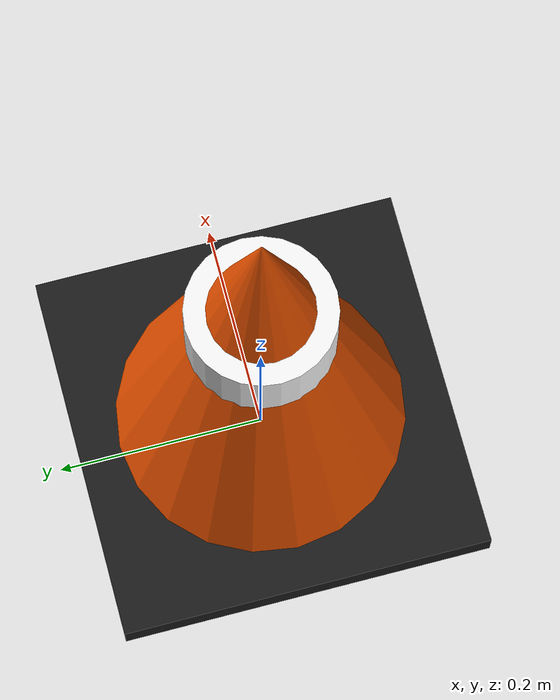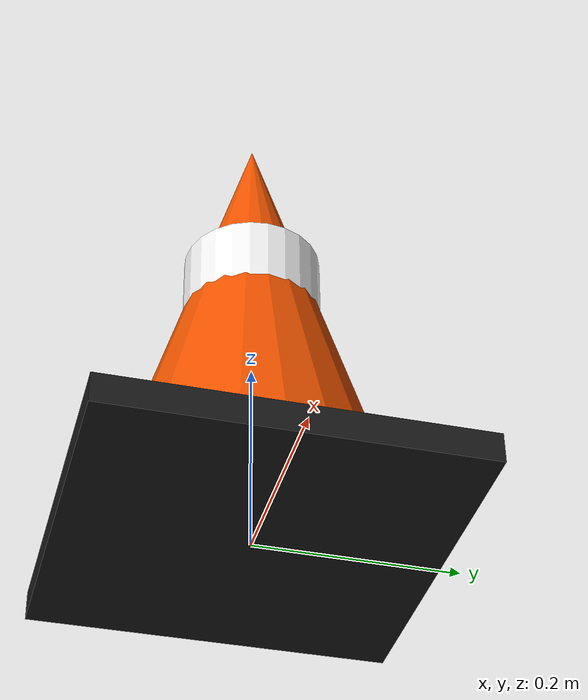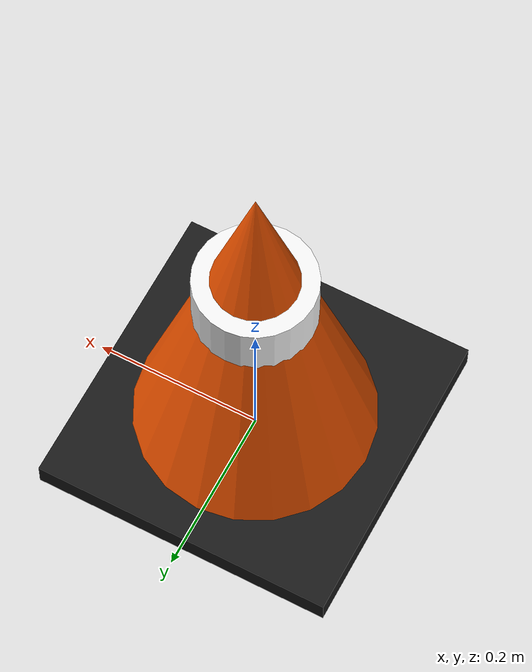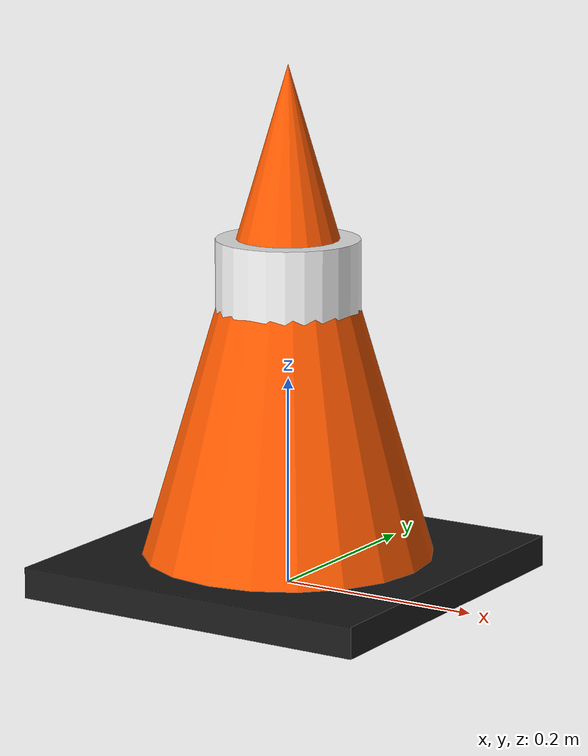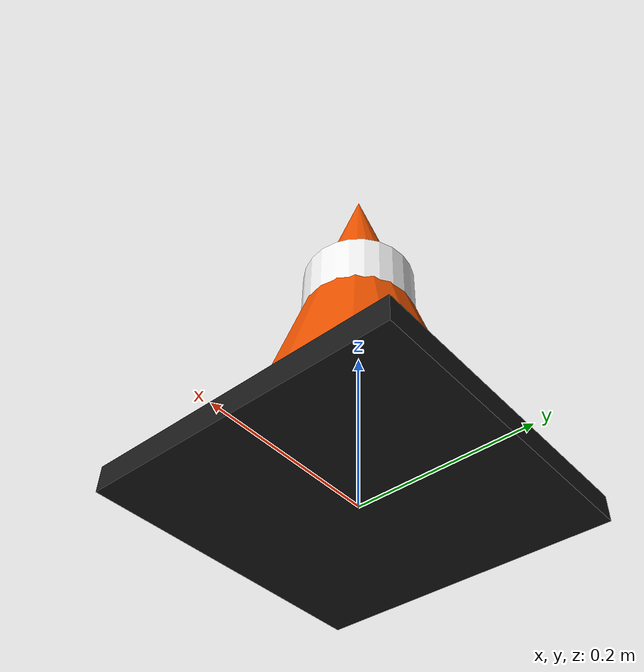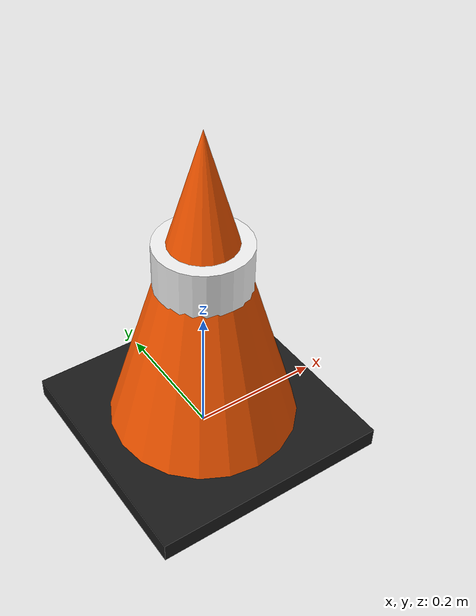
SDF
<?xml version="1.0" ?>
<sdf version="1.11">
  <model name="traffic_cone">
    <static>true</static>
    <link name="link">
      <collision name="base">
        <pose>0 0 0.015 0 0 0</pose>
        <geometry><box><size>0.36 0.36 0.03</size></box></geometry>
      </collision>
      <collision name="body">
        <pose>0 0 0.265 0 0 0</pose>
        <geometry><cone><radius>0.14</radius><length>0.47</length></cone></geometry>
      </collision>
      <visual name="base">
        <pose>0 0 0.015 0 0 0</pose>
        <geometry><box><size>0.36 0.36 0.03</size></box></geometry>
        <material>
          <ambient>0.1 0.1 0.1 1</ambient>
          <diffuse>0.1 0.1 0.1 1</diffuse>
        </material>
      </visual>
      <visual name="body">
        <pose>0 0 0.265 0 0 0</pose>
        <geometry><cone><radius>0.14</radius><length>0.47</length></cone></geometry>
        <material>
          <ambient>1.0 0.35 0.0 1</ambient>
          <diffuse>1.0 0.35 0.0 1</diffuse>
          <specular>0.3 0.3 0.3 1</specular>
        </material>
      </visual>
      <visual name="band">
        <pose>0 0 0.3 0 0 0</pose>
        <geometry><cylinder><radius>0.069</radius><length>0.07</length></cylinder></geometry>
        <material>
          <ambient>0.95 0.95 0.95 1</ambient>
          <diffuse>0.95 0.95 0.95 1</diffuse>
        </material>
      </visual>
    </link>
  </model>
</sdf>
